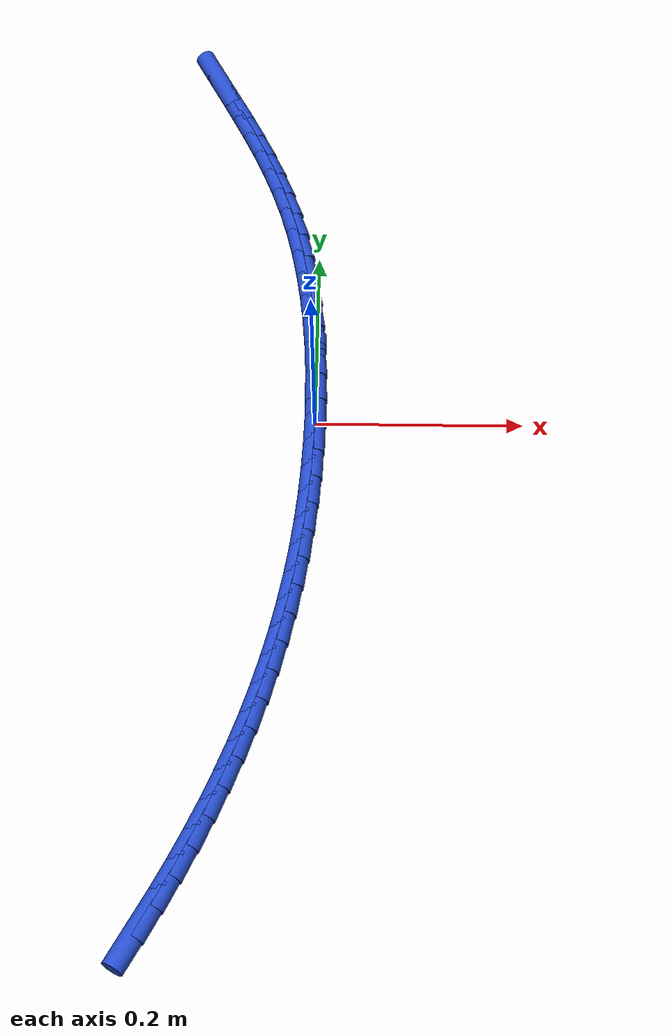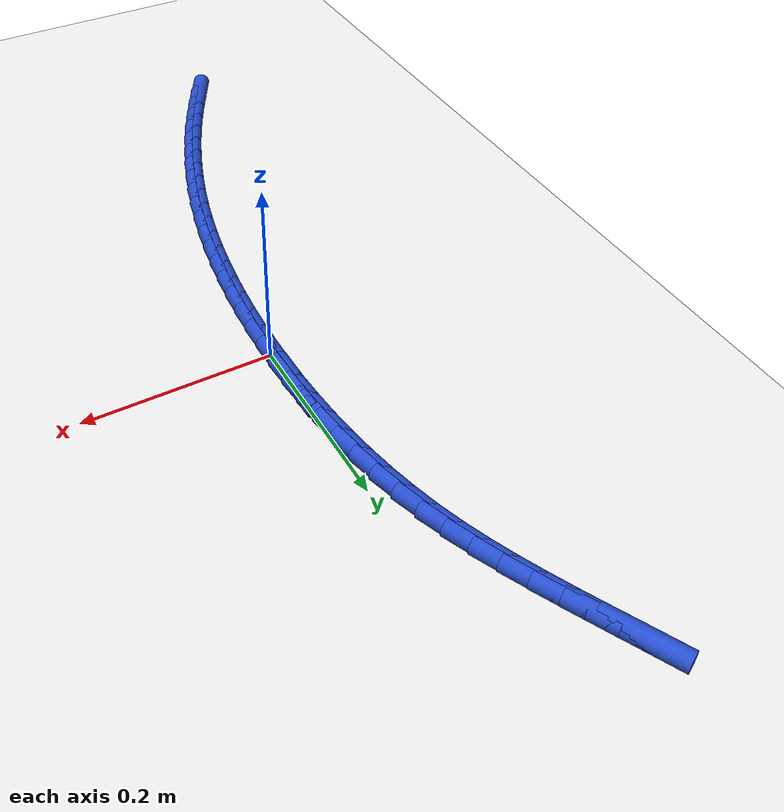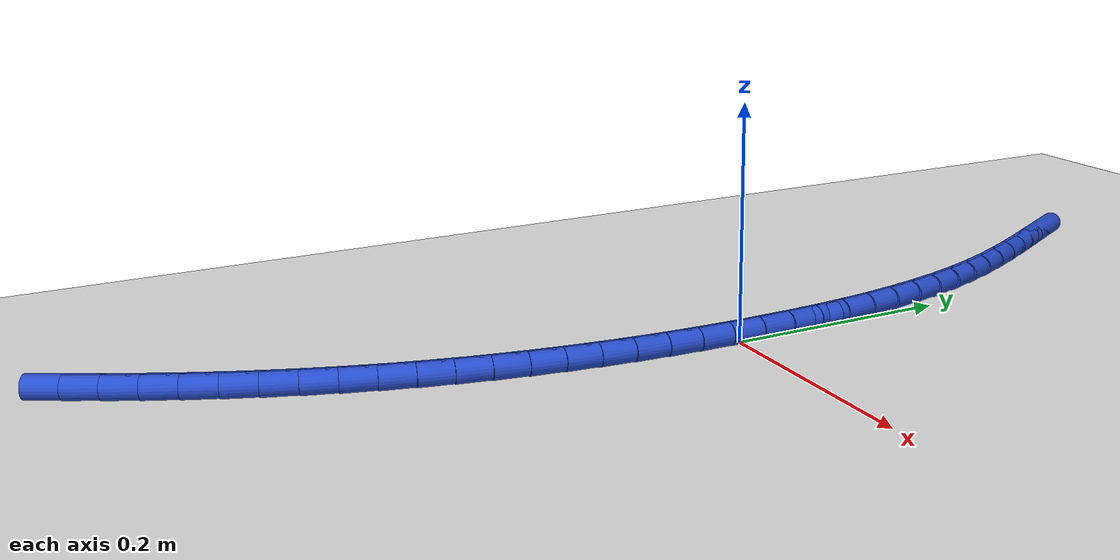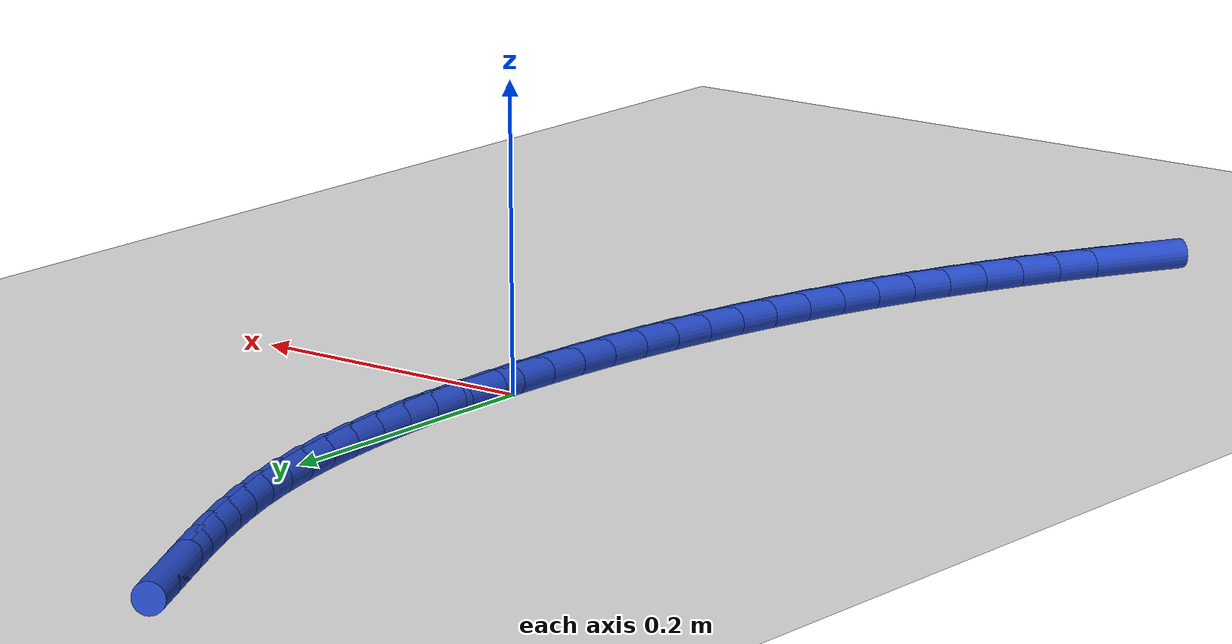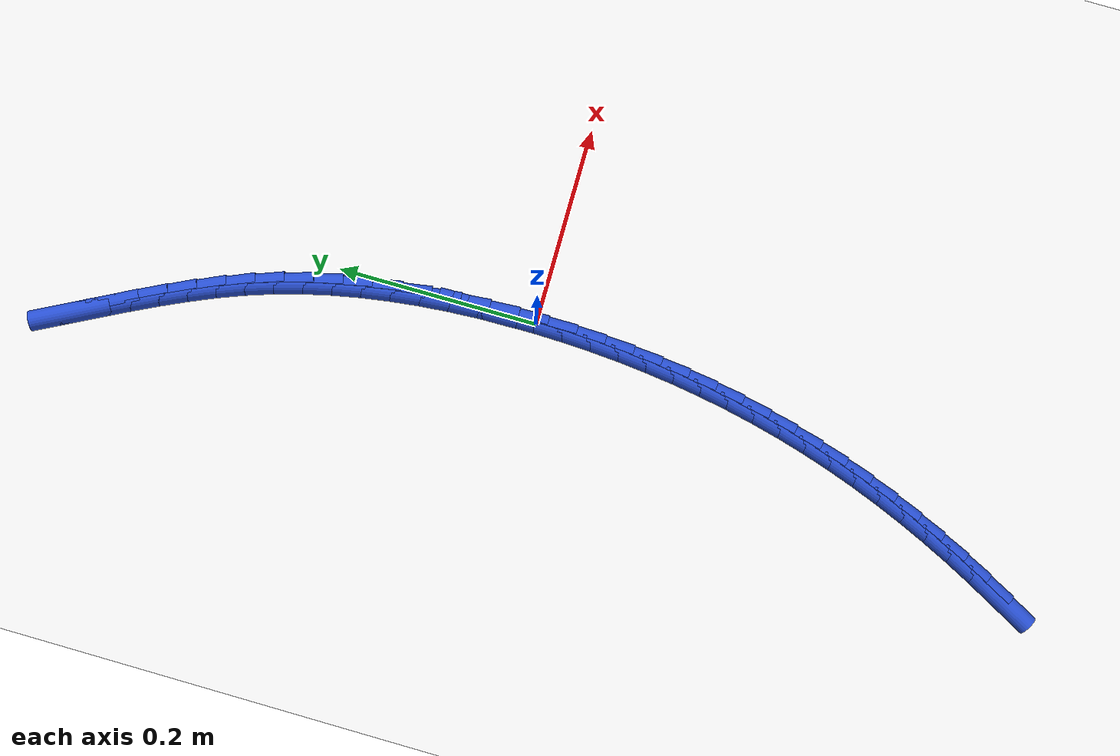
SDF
<sdf version="1.6">
 <world name="default">
  <model name="ground_plane">
   <static>1</static>
   <link name="link">
    <collision name="collision">
     <geometry><plane><normal>0 0 1</normal><size>100 100</size></plane></geometry>
     <surface><friction><ode><mu>100</mu><mu2>50</mu2></ode></friction></surface>
    </collision>
    <visual name="visual">
     <cast_shadows>0</cast_shadows>
     <geometry><plane><normal>0 0 1</normal><size>100 100</size></plane></geometry>
     <material>
      <script><uri>file://media/materials/scripts/gazebo.material</uri><name>Gazebo/WhiteGlow</name></script>
     </material>
    </visual>
   </link>
  </model>
  <model name="line">
   <link name="link_0">
    <pose>1.951563910473908e-17 -2.7755575615628914e-17 0.01 0 1.57 -1.5694608289692926</pose>
    <collision name="collision">
     <geometry><cylinder><radius>0.01</radius><length>0.08</length></cylinder></geometry>
    </collision>
    <visual name="visual">
     <material>
      <script><name>Gazebo/Blue</name><uri>file://media/materials/scripts/gazebo.material</uri></script>
     </material>
     <geometry><cylinder><radius>0.01</radius><length>0.08</length></cylinder></geometry>
    </visual>
   </link>
   <link name="link_1">
    <pose>-3.878354684757604e-05 0.029040499390203787 0.01 0 1.57 -1.5432904618189394</pose>
    <collision name="collision">
     <geometry><cylinder><radius>0.01</radius><length>0.08</length></cylinder></geometry>
    </collision>
    <visual name="visual">
     <material>
      <script><name>Gazebo/Blue</name><uri>file://media/materials/scripts/gazebo.material</uri></script>
     </material>
     <geometry><cylinder><radius>0.01</radius><length>0.08</length></cylinder></geometry>
    </visual>
   </link>
   <link name="link_2">
    <pose>-0.0008381468989530367 0.05809473020594538 0.01 0 1.57 -1.5150178035110116</pose>
    <collision name="collision">
     <geometry><cylinder><radius>0.01</radius><length>0.08</length></cylinder></geometry>
    </collision>
    <visual name="visual">
     <material>
      <script><name>Gazebo/Blue</name><uri>file://media/materials/scripts/gazebo.material</uri></script>
     </material>
     <geometry><cylinder><radius>0.01</radius><length>0.08</length></cylinder></geometry>
    </visual>
   </link>
   <link name="link_3">
    <pose>-0.002457510803524472 0.08709664795131193 0.01 0 1.57 -1.4844988249112694</pose>
    <collision name="collision">
     <geometry><cylinder><radius>0.01</radius><length>0.08</length></cylinder></geometry>
    </collision>
    <visual name="visual">
     <material>
      <script><name>Gazebo/Blue</name><uri>file://media/materials/scripts/gazebo.material</uri></script>
     </material>
     <geometry><cylinder><radius>0.01</radius><length>0.08</length></cylinder></geometry>
    </visual>
   </link>
   <link name="link_4">
    <pose>-0.004956296007769978 0.11598020813039038 0.01 0 1.57 -1.451582837474999</pose>
    <collision name="collision">
     <geometry><cylinder><radius>0.01</radius><length>0.08</length></cylinder></geometry>
    </collision>
    <visual name="visual">
     <material>
      <script><name>Gazebo/Blue</name><uri>file://media/materials/scripts/gazebo.material</uri></script>
     </material>
     <geometry><cylinder><radius>0.01</radius><length>0.08</length></cylinder></geometry>
    </visual>
   </link>
   <link name="link_5">
    <pose>-0.008393923258897665 0.1446793662472679 0.01 0 1.57 -1.4161160076519557</pose>
    <collision name="collision">
     <geometry><cylinder><radius>0.01</radius><length>0.08</length></cylinder></geometry>
    </collision>
    <visual name="visual">
     <material>
      <script><name>Gazebo/Blue</name><uri>file://media/materials/scripts/gazebo.material</uri></script>
     </material>
     <geometry><cylinder><radius>0.01</radius><length>0.08</length></cylinder></geometry>
    </visual>
   </link>
   <link name="link_6">
    <pose>-0.012829813304115645 0.17312807780603157 0.01 0 1.57 -1.3779462800567475</pose>
    <collision name="collision">
     <geometry><cylinder><radius>0.01</radius><length>0.08</length></cylinder></geometry>
    </collision>
    <visual name="visual">
     <material>
      <script><name>Gazebo/Blue</name><uri>file://media/materials/scripts/gazebo.material</uri></script>
     </material>
     <geometry><cylinder><radius>0.01</radius><length>0.08</length></cylinder></geometry>
    </visual>
   </link>
   <link name="link_7">
    <pose>-0.018323386890632003 0.2012602983107683 0.01 0 1.57 -1.3369300361527983</pose>
    <collision name="collision">
     <geometry><cylinder><radius>0.01</radius><length>0.08</length></cylinder></geometry>
    </collision>
    <visual name="visual">
     <material>
      <script><name>Gazebo/Blue</name><uri>file://media/materials/scripts/gazebo.material</uri></script>
     </material>
     <geometry><cylinder><radius>0.01</radius><length>0.08</length></cylinder></geometry>
    </visual>
   </link>
   <link name="link_8">
    <pose>-0.024934064765654858 0.22900998326556532 0.01 0 1.57 -1.2929407769741108</pose>
    <collision name="collision">
     <geometry><cylinder><radius>0.01</radius><length>0.08</length></cylinder></geometry>
    </collision>
    <visual name="visual">
     <material>
      <script><name>Gazebo/Blue</name><uri>file://media/materials/scripts/gazebo.material</uri></script>
     </material>
     <geometry><cylinder><radius>0.01</radius><length>0.08</length></cylinder></geometry>
    </visual>
   </link>
   <link name="link_9">
    <pose>-0.032721267676392315 0.25631108817450965 0.01 0 1.57 -1.2460916123326653</pose>
    <collision name="collision">
     <geometry><cylinder><radius>0.01</radius><length>0.08</length></cylinder></geometry>
    </collision>
    <visual name="visual">
     <material>
      <script><name>Gazebo/Blue</name><uri>file://media/materials/scripts/gazebo.material</uri></script>
     </material>
     <geometry><cylinder><radius>0.01</radius><length>0.08</length></cylinder></geometry>
    </visual>
   </link>
   <link name="link_10">
    <pose>-0.04173935688558246 0.28310128655229644 0.01 0 1.57 -1.2013061760137882</pose>
    <collision name="collision">
     <geometry><cylinder><radius>0.01</radius><length>0.08</length></cylinder></geometry>
    </collision>
    <visual name="visual">
     <material>
      <script><name>Gazebo/Blue</name><uri>file://media/materials/scripts/gazebo.material</uri></script>
     </material>
     <geometry><cylinder><radius>0.01</radius><length>0.08</length></cylinder></geometry>
    </visual>
   </link>
   <link name="link_11">
    <pose>-0.051925834778736635 0.30940412677849166 0.01 0 1.57 -1.163805305721505</pose>
    <collision name="collision">
     <geometry><cylinder><radius>0.01</radius><length>0.08</length></cylinder></geometry>
    </collision>
    <visual name="visual">
     <material>
      <script><name>Gazebo/Blue</name><uri>file://media/materials/scripts/gazebo.material</uri></script>
     </material>
     <geometry><cylinder><radius>0.01</radius><length>0.08</length></cylinder></geometry>
    </visual>
   </link>
   <link name="link_12">
    <pose>-0.06310107158197736 0.33532923292154576 0.01 0 1.57 -1.1340337116815435</pose>
    <collision name="collision">
     <geometry><cylinder><radius>0.01</radius><length>0.08</length></cylinder></geometry>
    </collision>
    <visual name="visual">
     <material>
      <script><name>Gazebo/Blue</name><uri>file://media/materials/scripts/gazebo.material</uri></script>
     </material>
     <geometry><cylinder><radius>0.01</radius><length>0.08</length></cylinder></geometry>
    </visual>
   </link>
   <link name="link_13">
    <pose>-0.07508032338043122 0.36098998722538833 0.01 0 1.57 -1.112064558878283</pose>
    <collision name="collision">
     <geometry><cylinder><radius>0.01</radius><length>0.08</length></cylinder></geometry>
    </collision>
    <visual name="visual">
     <material>
      <script><name>Gazebo/Blue</name><uri>file://media/materials/scripts/gazebo.material</uri></script>
     </material>
     <geometry><cylinder><radius>0.01</radius><length>0.08</length></cylinder></geometry>
    </visual>
   </link>
   <link name="link_14">
    <pose>-0.08767884625922485 0.3864997719339496 0.01 0 1.57 -1.0978659826872</pose>
    <collision name="collision">
     <geometry><cylinder><radius>0.01</radius><length>0.08</length></cylinder></geometry>
    </collision>
    <visual name="visual">
     <material>
      <script><name>Gazebo/Blue</name><uri>file://media/materials/scripts/gazebo.material</uri></script>
     </material>
     <geometry><cylinder><radius>0.01</radius><length>0.08</length></cylinder></geometry>
    </visual>
   </link>
   <link name="link_15">
    <pose>-0.10071189630348486 0.41197196929115903 0.01 0 1.57 -1.0913424383070138</pose>
    <collision name="collision">
     <geometry><cylinder><radius>0.01</radius><length>0.08</length></cylinder></geometry>
    </collision>
    <visual name="visual">
     <material>
      <script><name>Gazebo/Blue</name><uri>file://media/materials/scripts/gazebo.material</uri></script>
     </material>
     <geometry><cylinder><radius>0.01</radius><length>0.08</length></cylinder></geometry>
    </visual>
   </link>
   <link name="link_16">
    <pose>-0.11399472959833783 0.4375199615409466 0.01 0 1.57 -1.0923620267805894</pose>
    <collision name="collision">
     <geometry><cylinder><radius>0.01</radius><length>0.08</length></cylinder></geometry>
    </collision>
    <visual name="visual">
     <material>
      <script><name>Gazebo/Blue</name><uri>file://media/materials/scripts/gazebo.material</uri></script>
     </material>
     <geometry><cylinder><radius>0.01</radius><length>0.08</length></cylinder></geometry>
    </visual>
   </link>
   <link name="link_212">
    <pose>-0.13115712820093545 -0.4945074677153827 0.01 0 1.57 1.0735301097802996</pose>
    <collision name="collision">
     <geometry><cylinder><radius>0.01</radius><length>0.08</length></cylinder></geometry>
    </collision>
    <visual name="visual">
     <material>
      <script><name>Gazebo/Blue</name><uri>file://media/materials/scripts/gazebo.material</uri></script>
     </material>
     <geometry><cylinder><radius>0.01</radius><length>0.08</length></cylinder></geometry>
    </visual>
   </link>
   <link name="link_213">
    <pose>-0.11739468926873933 -0.46915098047541637 0.01 0 1.57 1.0988795598903252</pose>
    <collision name="collision">
     <geometry><cylinder><radius>0.01</radius><length>0.08</length></cylinder></geometry>
    </collision>
    <visual name="visual">
     <material>
      <script><name>Gazebo/Blue</name><uri>file://media/materials/scripts/gazebo.material</uri></script>
     </material>
     <geometry><cylinder><radius>0.01</radius><length>0.08</length></cylinder></geometry>
    </visual>
   </link>
   <link name="link_214">
    <pose>-0.1042933805361453 -0.443481246120398 0.01 0 1.57 1.1249259597640588</pose>
    <collision name="collision">
     <geometry><cylinder><radius>0.01</radius><length>0.08</length></cylinder></geometry>
    </collision>
    <visual name="visual">
     <material>
      <script><name>Gazebo/Blue</name><uri>file://media/materials/scripts/gazebo.material</uri></script>
     </material>
     <geometry><cylinder><radius>0.01</radius><length>0.08</length></cylinder></geometry>
    </visual>
   </link>
   <link name="link_215">
    <pose>-0.09187963986240079 -0.4175095519811778 0.01 0 1.57 1.1516956511281784</pose>
    <collision name="collision">
     <geometry><cylinder><radius>0.01</radius><length>0.08</length></cylinder></geometry>
    </collision>
    <visual name="visual">
     <material>
      <script><name>Gazebo/Blue</name><uri>file://media/materials/scripts/gazebo.material</uri></script>
     </material>
     <geometry><cylinder><radius>0.01</radius><length>0.08</length></cylinder></geometry>
    </visual>
   </link>
   <link name="link_216">
    <pose>-0.08017990510675413 -0.3912471853886077 0.01 0 1.57 1.1792124688880914</pose>
    <collision name="collision">
     <geometry><cylinder><radius>0.01</radius><length>0.08</length></cylinder></geometry>
    </collision>
    <visual name="visual">
     <material>
      <script><name>Gazebo/Blue</name><uri>file://media/materials/scripts/gazebo.material</uri></script>
     </material>
     <geometry><cylinder><radius>0.01</radius><length>0.08</length></cylinder></geometry>
    </visual>
   </link>
   <link name="link_217">
    <pose>-0.06922061412845269 -0.36470543367353786 0.01 0 1.57 1.2074972282513259</pose>
    <collision name="collision">
     <geometry><cylinder><radius>0.01</radius><length>0.08</length></cylinder></geometry>
    </collision>
    <visual name="visual">
     <material>
      <script><name>Gazebo/Blue</name><uri>file://media/materials/scripts/gazebo.material</uri></script>
     </material>
     <geometry><cylinder><radius>0.01</radius><length>0.08</length></cylinder></geometry>
    </visual>
   </link>
   <link name="link_218">
    <pose>-0.05902820478674427 -0.3378955841668192 0.01 0 1.57 1.2365671576838215</pose>
    <collision name="collision">
     <geometry><cylinder><radius>0.01</radius><length>0.08</length></cylinder></geometry>
    </collision>
    <visual name="visual">
     <material>
      <script><name>Gazebo/Blue</name><uri>file://media/materials/scripts/gazebo.material</uri></script>
     </material>
     <geometry><cylinder><radius>0.01</radius><length>0.08</length></cylinder></geometry>
    </visual>
   </link>
   <link name="link_219">
    <pose>-0.04962911494087634 -0.3108289241993019 0.01 0 1.57 1.2664352836705066</pose>
    <collision name="collision">
     <geometry><cylinder><radius>0.01</radius><length>0.08</length></cylinder></geometry>
    </collision>
    <visual name="visual">
     <material>
      <script><name>Gazebo/Blue</name><uri>file://media/materials/scripts/gazebo.material</uri></script>
     </material>
     <geometry><cylinder><radius>0.01</radius><length>0.08</length></cylinder></geometry>
    </visual>
   </link>
   <link name="link_220">
    <pose>-0.04104978245009709 -0.2835167411018379 0.01 0 1.57 1.2970785385093386</pose>
    <collision name="collision">
     <geometry><cylinder><radius>0.01</radius><length>0.08</length></cylinder></geometry>
    </collision>
    <visual name="visual">
     <material>
      <script><name>Gazebo/Blue</name><uri>file://media/materials/scripts/gazebo.material</uri></script>
     </material>
     <geometry><cylinder><radius>0.01</radius><length>0.08</length></cylinder></geometry>
    </visual>
   </link>
   <link name="link_221">
    <pose>-0.03331574258715039 -0.2559704138860879 0.01 0 1.57 1.327779943052877</pose>
    <collision name="collision">
     <geometry><cylinder><radius>0.01</radius><length>0.08</length></cylinder></geometry>
    </collision>
    <visual name="visual">
     <material>
      <script><name>Gazebo/Blue</name><uri>file://media/materials/scripts/gazebo.material</uri></script>
     </material>
     <geometry><cylinder><radius>0.01</radius><length>0.08</length></cylinder></geometry>
    </visual>
   </link>
   <link name="link_222">
    <pose>-0.026431858158712563 -0.2282034213828869 0.01 0 1.57 1.3578076955450034</pose>
    <collision name="collision">
     <geometry><cylinder><radius>0.01</radius><length>0.08</length></cylinder></geometry>
    </collision>
    <visual name="visual">
     <material>
      <script><name>Gazebo/Blue</name><uri>file://media/materials/scripts/gazebo.material</uri></script>
     </material>
     <geometry><cylinder><radius>0.01</radius><length>0.08</length></cylinder></geometry>
    </visual>
   </link>
   <link name="link_223">
    <pose>-0.02038236773652037 -0.20023133734313442 0.01 0 1.57 1.3871137303475494</pose>
    <collision name="collision">
     <geometry><cylinder><radius>0.01</radius><length>0.08</length></cylinder></geometry>
    </collision>
    <visual name="visual">
     <material>
      <script><name>Gazebo/Blue</name><uri>file://media/materials/scripts/gazebo.material</uri></script>
     </material>
     <geometry><cylinder><radius>0.01</radius><length>0.08</length></cylinder></geometry>
    </visual>
   </link>
   <link name="link_224">
    <pose>-0.015150616952049636 -0.1720698262187194 0.01 0 1.57 1.4156866235987515</pose>
    <collision name="collision">
     <geometry><cylinder><radius>0.01</radius><length>0.08</length></cylinder></geometry>
    </collision>
    <visual name="visual">
     <material>
      <script><name>Gazebo/Blue</name><uri>file://media/materials/scripts/gazebo.material</uri></script>
     </material>
     <geometry><cylinder><radius>0.01</radius><length>0.08</length></cylinder></geometry>
    </visual>
   </link>
   <link name="link_225">
    <pose>-0.010719951436775685 -0.14373455246152864 0.01 0 1.57 1.4435202489649046</pose>
    <collision name="collision">
     <geometry><cylinder><radius>0.01</radius><length>0.08</length></cylinder></geometry>
    </collision>
    <visual name="visual">
     <material>
      <script><name>Gazebo/Blue</name><uri>file://media/materials/scripts/gazebo.material</uri></script>
     </material>
     <geometry><cylinder><radius>0.01</radius><length>0.08</length></cylinder></geometry>
    </visual>
   </link>
   <link name="link_226">
    <pose>-0.007073716822174005 -0.1152411805234495 0.01 0 1.57 1.4706133023736716</pose>
    <collision name="collision">
     <geometry><cylinder><radius>0.01</radius><length>0.08</length></cylinder></geometry>
    </collision>
    <visual name="visual">
     <material>
      <script><name>Gazebo/Blue</name><uri>file://media/materials/scripts/gazebo.material</uri></script>
     </material>
     <geometry><cylinder><radius>0.01</radius><length>0.08</length></cylinder></geometry>
    </visual>
   </link>
   <link name="link_227">
    <pose>-0.0041952587397201015 -0.08660537485636968 0.01 0 1.57 1.496968809565896</pose>
    <collision name="collision">
     <geometry><cylinder><radius>0.01</radius><length>0.08</length></cylinder></geometry>
    </collision>
    <visual name="visual">
     <material>
      <script><name>Gazebo/Blue</name><uri>file://media/materials/scripts/gazebo.material</uri></script>
     </material>
     <geometry><cylinder><radius>0.01</radius><length>0.08</length></cylinder></geometry>
    </visual>
   </link>
   <link name="link_228">
    <pose>-0.0020679228208894214 -0.057842799912175835 0.01 0 1.57 1.5225936317648794</pose>
    <collision name="collision">
     <geometry><cylinder><radius>0.01</radius><length>0.08</length></cylinder></geometry>
    </collision>
    <visual name="visual">
     <material>
      <script><name>Gazebo/Blue</name><uri>file://media/materials/scripts/gazebo.material</uri></script>
     </material>
     <geometry><cylinder><radius>0.01</radius><length>0.08</length></cylinder></geometry>
    </visual>
   </link>
   <link name="link_229">
    <pose>-0.0006750546971575682 -0.028969120142756946 0.01 0 1.57 1.5474979819843333</pose>
    <collision name="collision">
     <geometry><cylinder><radius>0.01</radius><length>0.08</length></cylinder></geometry>
    </collision>
    <visual name="visual">
     <material>
      <script><name>Gazebo/Blue</name><uri>file://media/materials/scripts/gazebo.material</uri></script>
     </material>
     <geometry><cylinder><radius>0.01</radius><length>0.08</length></cylinder></geometry>
    </visual>
   </link>
   <link name="link_230">
    <pose>2.5587171270657905e-17 2.0816681711721685e-16 0.01 0 1.57 -1.5698976918241339</pose>
    <collision name="collision">
     <geometry><cylinder><radius>0.01</radius><length>0.08</length></cylinder></geometry>
    </collision>
    <visual name="visual">
     <material>
      <script><name>Gazebo/Blue</name><uri>file://media/materials/scripts/gazebo.material</uri></script>
     </material>
     <geometry><cylinder><radius>0.01</radius><length>0.08</length></cylinder></geometry>
    </visual>
   </link>
   <link name="link_231">
    <pose>-2.610436089213724e-05 0.029048896064208095 0.01 0 1.57 -1.5463925280000512</pose>
    <collision name="collision">
     <geometry><cylinder><radius>0.01</radius><length>0.08</length></cylinder></geometry>
    </collision>
    <visual name="visual">
     <material>
      <script><name>Gazebo/Blue</name><uri>file://media/materials/scripts/gazebo.material</uri></script>
     </material>
     <geometry><cylinder><radius>0.01</radius><length>0.08</length></cylinder></geometry>
    </visual>
   </link>
   <link name="link_232">
    <pose>-0.0007367134113095515 0.05816190359797925 0.01 0 1.57 -1.5581304068466635</pose>
    <collision name="collision">
     <geometry><cylinder><radius>0.01</radius><length>0.08</length></cylinder></geometry>
    </collision>
    <visual name="visual">
     <material>
      <script><name>Gazebo/Blue</name><uri>file://media/materials/scripts/gazebo.material</uri></script>
     </material>
     <geometry><cylinder><radius>0.01</radius><length>0.08</length></cylinder></geometry>
    </visual>
   </link>
  </model>
 </world>
</sdf>
